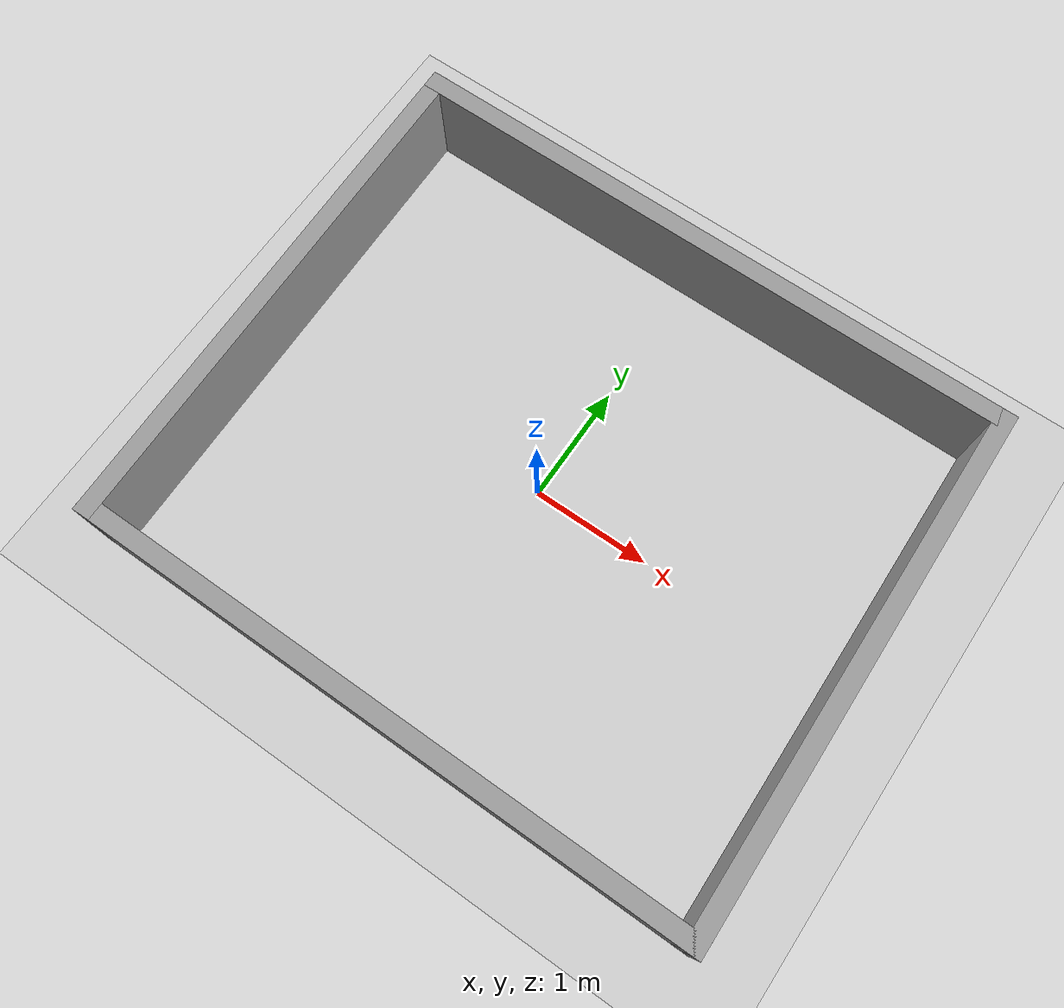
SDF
<sdf version="1.7">
 <world name="default">
  <light name="sun" type="directional">
   <pose>0 0 10 0 -0 0</pose>
   <diffuse>0.8 0.8 0.8 1</diffuse>
   <specular>0.2 0.2 0.2 1</specular>
   <attenuation>
    <range>1000</range>
    <constant>0.9</constant>
    <linear>0.01</linear>
    <quadratic>0.001</quadratic>
   </attenuation>
   <direction>-0.5 0.1 -0.9</direction>
   <spot><inner_angle>0</inner_angle><outer_angle>0</outer_angle><falloff>0</falloff></spot>
  </light>
  <model name="ground_plane">
   <static>1</static>
   <link name="link">
    <collision name="collision">
     <geometry><plane><normal>0 0 1</normal><size>100 100</size></plane></geometry>
     <surface><friction><ode><mu>100</mu><mu2>50</mu2></ode></friction></surface>
    </collision>
    <visual name="visual">
     <cast_shadows>0</cast_shadows>
     <geometry><plane><normal>0 0 1</normal><size>100 100</size></plane></geometry>
     <material>
      <script><uri>file://media/materials/scripts/gazebo.material</uri><name>Gazebo/Grey</name></script>
     </material>
    </visual>
   </link>
  </model>
  <gravity>0 0 -9.8</gravity>
  <magnetic_field>6e-06 2.3e-05 -4.2e-05</magnetic_field>
  <atmosphere type="adiabatic"/>
  <physics type="ode">
   <max_step_size>0.001</max_step_size>
   <real_time_factor>1</real_time_factor>
   <real_time_update_rate>1000</real_time_update_rate>
  </physics>
  <scene><ambient>0.4 0.4 0.4 1</ambient><background>0.7 0.7 0.7 1</background><shadows>1</shadows></scene>
  <audio><device>default</device></audio>
  <spherical_coordinates>
   <surface_model>EARTH_WGS84</surface_model>
   <latitude_deg>0</latitude_deg>
   <longitude_deg>0</longitude_deg>
   <elevation>0</elevation>
   <heading_deg>0</heading_deg>
  </spherical_coordinates>
  <model name="Untitled2_0">
   <pose>1.55071 1.05275 0 0 -0 0</pose>
   <link name="Wall_10">
    <collision name="Wall_10_Collision">
     <geometry><box><size>5.32 0.15 0.8</size></box></geometry>
     <pose>0 0 0.4 0 -0 0</pose>
    </collision>
    <visual name="Wall_10_Visual">
     <pose>0 0 0.4 0 -0 0</pose>
     <geometry><box><size>5.32 0.15 0.8</size></box></geometry>
     <material>
      <script><uri>file://media/materials/scripts/gazebo.material</uri><name>Gazebo/Grey</name></script>
      <ambient>1 1 1 1</ambient>
     </material>
     <meta><layer>0</layer></meta>
    </visual>
    <pose>-1.4829 1.14768 0 0 -0 0</pose>
    <self_collide>1</self_collide>
   </link>
   <link name="Wall_11">
    <collision name="Wall_11_Collision">
     <geometry><box><size>4.47586 0.15 0.8</size></box></geometry>
     <pose>0 0 0.4 0 -0 0</pose>
    </collision>
    <visual name="Wall_11_Visual">
     <pose>0 0 0.4 0 -0 0</pose>
     <geometry><box><size>4.47586 0.15 0.8</size></box></geometry>
     <material>
      <script><uri>file://media/materials/scripts/gazebo.material</uri><name>Gazebo/Grey</name></script>
      <ambient>1 1 1 1</ambient>
     </material>
     <meta><layer>0</layer></meta>
    </visual>
    <pose>1.13709 -1.01482 0 0 -0 -1.55461</pose>
    <self_collide>1</self_collide>
   </link>
   <link name="Wall_12">
    <collision name="Wall_12_Collision">
     <geometry><box><size>5.32098 0.15 0.8</size></box></geometry>
     <pose>0 0 0.4 0 -0 0</pose>
    </collision>
    <visual name="Wall_12_Visual">
     <pose>0 0 0.4 0 -0 0</pose>
     <geometry><box><size>5.32098 0.15 0.8</size></box></geometry>
     <material>
      <script><uri>file://media/materials/scripts/gazebo.material</uri><name>Gazebo/Grey</name></script>
      <ambient>1 1 1 1</ambient>
     </material>
     <meta><layer>0</layer></meta>
    </visual>
    <pose>-1.41341 -3.17732 0 0 -0 3.14159</pose>
    <self_collide>1</self_collide>
   </link>
   <link name="Wall_13">
    <collision name="Wall_13_Collision">
     <geometry><box><size>4.47591 0.15 0.8</size></box></geometry>
     <pose>0 0 0.4 0 -0 0</pose>
    </collision>
    <visual name="Wall_13_Visual">
     <pose>0 0 0.4 0 -0 0</pose>
     <geometry><box><size>4.47591 0.15 0.8</size></box></geometry>
     <material>
      <script><uri>file://media/materials/scripts/gazebo.material</uri><name>Gazebo/Grey</name></script>
      <ambient>1 1 1 1</ambient>
     </material>
     <meta><layer>0</layer></meta>
    </visual>
    <pose>-4.03341 -1.01482 0 0 -0 1.58675</pose>
    <self_collide>1</self_collide>
   </link>
   <static>1</static>
  </model>
 </world>
</sdf>
